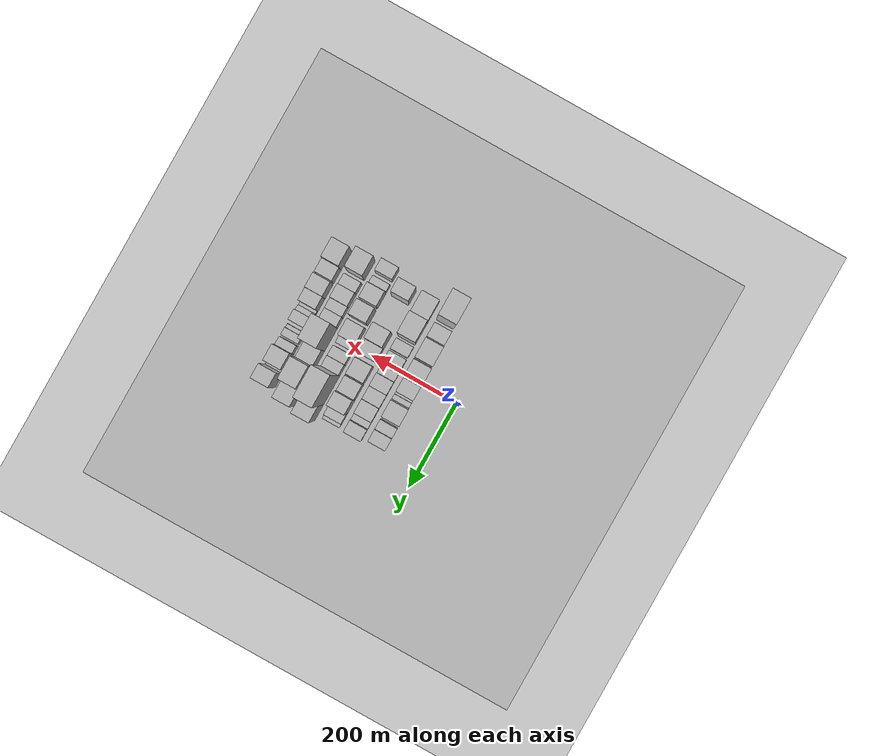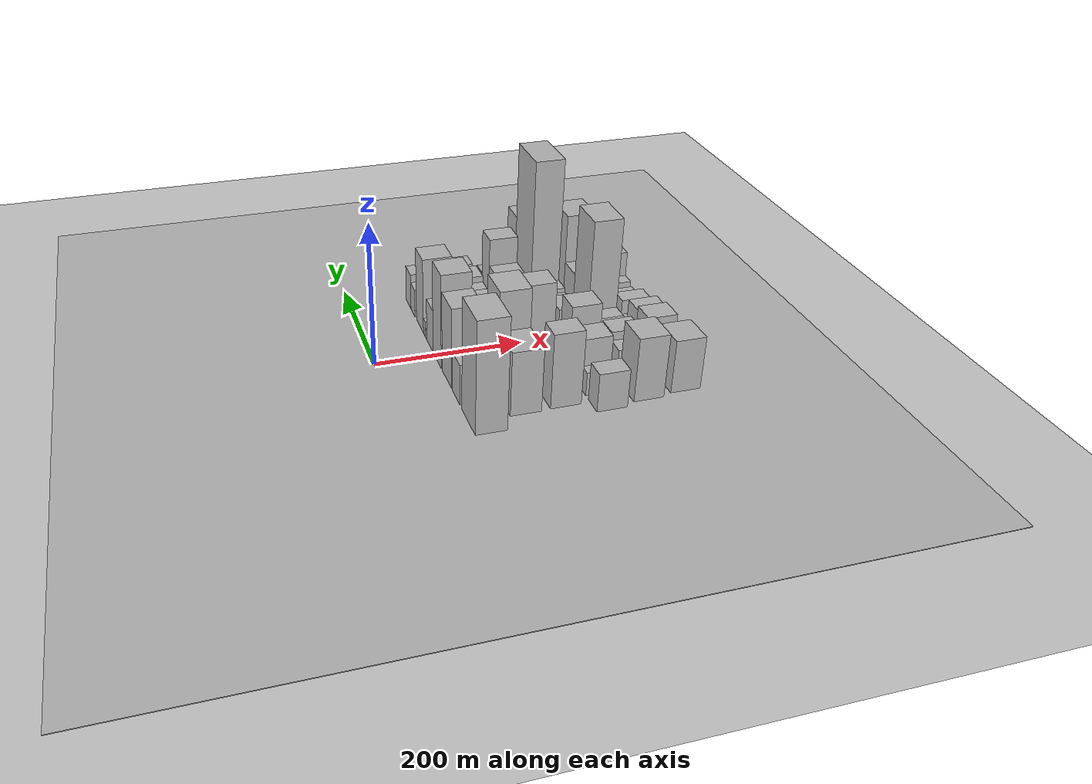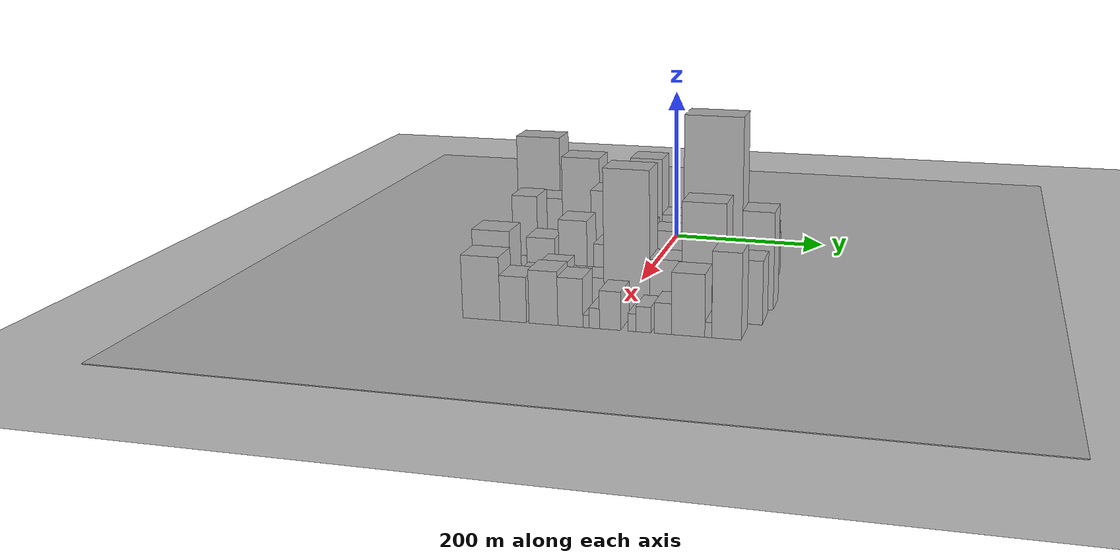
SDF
<sdf version="1.6">
 <world name="default">
  <include><name>ground_plane_1</name><uri>model://HANNAS_ground_plane</uri></include>
  <include>
   <name>ground_plane_2</name>
   <uri>model://HANNAS_ground_plane</uri>
   <pose>100 0 0  0 0 0</pose>
  </include>
  <model name="building_20">
   <static>1</static>
   <pose>100.0000 -157.6240 0 0.000000 0.000000 0.000000</pose>
   <link name="link">
    <pose>0 0 78.00 0 0 0</pose>
    <collision name="collision"><geometry><box><size>40.0000 57.4465 156.0000</size></box></geometry></collision>
    <visual name="visual">
     <cast_shadows>0</cast_shadows>
     <geometry><box><size>40.0000 57.4465 156.0000</size></box></geometry>
     <material>
      <script>
       <uri>model://HANNAS_wall/materials/scripts</uri>
       <uri>model://HANNAS_wall/materials/textures</uri>
       <name>vrc/HANNAS_wall</name>
      </script>
     </material>
    </visual>
   </link>
  </model>
  <model name="building_21">
   <static>1</static>
   <pose>100.0000 -103.6680 0 0.000000 0.000000 0.000000</pose>
   <link name="link">
    <pose>0 0 28.50 0 0 0</pose>
    <collision name="collision"><geometry><box><size>40.0000 32.4657 57.0000</size></box></geometry></collision>
    <visual name="visual">
     <cast_shadows>0</cast_shadows>
     <geometry><box><size>40.0000 32.4657 57.0000</size></box></geometry>
     <material>
      <script>
       <uri>model://HANNAS_wall/materials/scripts</uri>
       <uri>model://HANNAS_wall/materials/textures</uri>
       <name>vrc/HANNAS_wall</name>
      </script>
     </material>
    </visual>
   </link>
  </model>
  <model name="building_22">
   <static>1</static>
   <pose>100.0000 -60.3665 0 0.000000 0.000000 0.000000</pose>
   <link name="link">
    <pose>0 0 57.00 0 0 0</pose>
    <collision name="collision"><geometry><box><size>40.0000 44.1373 114.0000</size></box></geometry></collision>
    <visual name="visual">
     <cast_shadows>0</cast_shadows>
     <geometry><box><size>40.0000 44.1373 114.0000</size></box></geometry>
     <material>
      <script>
       <uri>model://HANNAS_wall/materials/scripts</uri>
       <uri>model://HANNAS_wall/materials/textures</uri>
       <name>vrc/HANNAS_wall</name>
      </script>
     </material>
    </visual>
   </link>
  </model>
  <model name="building_23">
   <static>1</static>
   <pose>100.0000 -13.8232 0 0.000000 0.000000 0.000000</pose>
   <link name="link">
    <pose>0 0 67.50 0 0 0</pose>
    <collision name="collision"><geometry><box><size>40.0000 40.9494 135.0000</size></box></geometry></collision>
    <visual name="visual">
     <cast_shadows>0</cast_shadows>
     <geometry><box><size>40.0000 40.9494 135.0000</size></box></geometry>
     <material>
      <script>
       <uri>model://HANNAS_wall/materials/scripts</uri>
       <uri>model://HANNAS_wall/materials/textures</uri>
       <name>vrc/HANNAS_wall</name>
      </script>
     </material>
    </visual>
   </link>
  </model>
  <model name="building_24">
   <static>1</static>
   <pose>100.0000 22.8650 0 0.000000 0.000000 0.000000</pose>
   <link name="link">
    <pose>0 0 31.50 0 0 0</pose>
    <collision name="collision"><geometry><box><size>40.0000 32.4269 63.0000</size></box></geometry></collision>
    <visual name="visual">
     <cast_shadows>0</cast_shadows>
     <geometry><box><size>40.0000 32.4269 63.0000</size></box></geometry>
     <material>
      <script>
       <uri>model://HANNAS_wall/materials/scripts</uri>
       <uri>model://HANNAS_wall/materials/textures</uri>
       <name>vrc/HANNAS_wall</name>
      </script>
     </material>
    </visual>
   </link>
  </model>
  <model name="building_25">
   <static>1</static>
   <pose>100.0000 42.1342 0 0.000000 0.000000 0.000000</pose>
   <link name="link">
    <pose>0 0 7.50 0 0 0</pose>
    <collision name="collision"><geometry><box><size>40.0000 6.1115 15.0000</size></box></geometry></collision>
    <visual name="visual">
     <cast_shadows>0</cast_shadows>
     <geometry><box><size>40.0000 6.1115 15.0000</size></box></geometry>
     <material>
      <script>
       <uri>model://HANNAS_wall/materials/scripts</uri>
       <uri>model://HANNAS_wall/materials/textures</uri>
       <name>vrc/HANNAS_wall</name>
      </script>
     </material>
    </visual>
   </link>
  </model>
  <model name="building_26">
   <static>1</static>
   <pose>100.0000 51.0352 0 0.000000 0.000000 0.000000</pose>
   <link name="link">
    <pose>0 0 12.00 0 0 0</pose>
    <collision name="collision"><geometry><box><size>40.0000 11.6906 24.0000</size></box></geometry></collision>
    <visual name="visual">
     <cast_shadows>0</cast_shadows>
     <geometry><box><size>40.0000 11.6906 24.0000</size></box></geometry>
     <material>
      <script>
       <uri>model://HANNAS_wall/materials/scripts</uri>
       <uri>model://HANNAS_wall/materials/textures</uri>
       <name>vrc/HANNAS_wall</name>
      </script>
     </material>
    </visual>
   </link>
  </model>
  <model name="building_27">
   <static>1</static>
   <pose>100.0000 75.7441 0 0.000000 0.000000 0.000000</pose>
   <link name="link">
    <pose>0 0 55.50 0 0 0</pose>
    <collision name="collision"><geometry><box><size>40.0000 37.7272 111.0000</size></box></geometry></collision>
    <visual name="visual">
     <cast_shadows>0</cast_shadows>
     <geometry><box><size>40.0000 37.7272 111.0000</size></box></geometry>
     <material>
      <script>
       <uri>model://HANNAS_wall/materials/scripts</uri>
       <uri>model://HANNAS_wall/materials/textures</uri>
       <name>vrc/HANNAS_wall</name>
      </script>
     </material>
    </visual>
   </link>
  </model>
  <model name="building_28">
   <static>1</static>
   <pose>100.0000 114.8784 0 0.000000 0.000000 0.000000</pose>
   <link name="link">
    <pose>0 0 21.00 0 0 0</pose>
    <collision name="collision"><geometry><box><size>40.0000 22.5414 42.0000</size></box></geometry></collision>
    <visual name="visual">
     <cast_shadows>0</cast_shadows>
     <geometry><box><size>40.0000 22.5414 42.0000</size></box></geometry>
     <material>
      <script>
       <uri>model://HANNAS_wall/materials/scripts</uri>
       <uri>model://HANNAS_wall/materials/textures</uri>
       <name>vrc/HANNAS_wall</name>
      </script>
     </material>
    </visual>
   </link>
  </model>
  <model name="building_29">
   <static>1</static>
   <pose>100.0000 139.9998 0 0.000000 0.000000 0.000000</pose>
   <link name="link">
    <pose>0 0 27.00 0 0 0</pose>
    <collision name="collision"><geometry><box><size>40.0000 27.7014 54.0000</size></box></geometry></collision>
    <visual name="visual">
     <cast_shadows>0</cast_shadows>
     <geometry><box><size>40.0000 27.7014 54.0000</size></box></geometry>
     <material>
      <script>
       <uri>model://HANNAS_wall/materials/scripts</uri>
       <uri>model://HANNAS_wall/materials/textures</uri>
       <name>vrc/HANNAS_wall</name>
      </script>
     </material>
    </visual>
   </link>
  </model>
  <model name="building_75">
   <static>1</static>
   <pose>152.0000 -135.1604 0 0.000000 0.000000 0.000000</pose>
   <link name="link">
    <pose>0 0 45.00 0 0 0</pose>
    <collision name="collision"><geometry><box><size>40.0000 50.0176 90.0000</size></box></geometry></collision>
    <visual name="visual">
     <cast_shadows>0</cast_shadows>
     <geometry><box><size>40.0000 50.0176 90.0000</size></box></geometry>
     <material>
      <script>
       <uri>model://HANNAS_wall/materials/scripts</uri>
       <uri>model://HANNAS_wall/materials/textures</uri>
       <name>vrc/HANNAS_wall</name>
      </script>
     </material>
    </visual>
   </link>
  </model>
  <model name="building_76">
   <static>1</static>
   <pose>152.0000 -85.8209 0 0.000000 0.000000 0.000000</pose>
   <link name="link">
    <pose>0 0 72.00 0 0 0</pose>
    <collision name="collision"><geometry><box><size>40.0000 48.6614 144.0000</size></box></geometry></collision>
    <visual name="visual">
     <cast_shadows>0</cast_shadows>
     <geometry><box><size>40.0000 48.6614 144.0000</size></box></geometry>
     <material>
      <script>
       <uri>model://HANNAS_wall/materials/scripts</uri>
       <uri>model://HANNAS_wall/materials/textures</uri>
       <name>vrc/HANNAS_wall</name>
      </script>
     </material>
    </visual>
   </link>
  </model>
  <model name="building_77">
   <static>1</static>
   <pose>152.0000 -42.9681 0 0.000000 0.000000 0.000000</pose>
   <link name="link">
    <pose>0 0 24.00 0 0 0</pose>
    <collision name="collision"><geometry><box><size>40.0000 25.0443 48.0000</size></box></geometry></collision>
    <visual name="visual">
     <cast_shadows>0</cast_shadows>
     <geometry><box><size>40.0000 25.0443 48.0000</size></box></geometry>
     <material>
      <script>
       <uri>model://HANNAS_wall/materials/scripts</uri>
       <uri>model://HANNAS_wall/materials/textures</uri>
       <name>vrc/HANNAS_wall</name>
      </script>
     </material>
    </visual>
   </link>
  </model>
  <model name="building_78">
   <static>1</static>
   <pose>152.0000 -10.2295 0 0.000000 0.000000 0.000000</pose>
   <link name="link">
    <pose>0 0 31.50 0 0 0</pose>
    <collision name="collision"><geometry><box><size>40.0000 32.4330 63.0000</size></box></geometry></collision>
    <visual name="visual">
     <cast_shadows>0</cast_shadows>
     <geometry><box><size>40.0000 32.4330 63.0000</size></box></geometry>
     <material>
      <script>
       <uri>model://HANNAS_wall/materials/scripts</uri>
       <uri>model://HANNAS_wall/materials/textures</uri>
       <name>vrc/HANNAS_wall</name>
      </script>
     </material>
    </visual>
   </link>
  </model>
  <model name="building_79">
   <static>1</static>
   <pose>152.0000 15.5596 0 0.000000 0.000000 0.000000</pose>
   <link name="link">
    <pose>0 0 16.50 0 0 0</pose>
    <collision name="collision"><geometry><box><size>40.0000 19.1452 33.0000</size></box></geometry></collision>
    <visual name="visual">
     <cast_shadows>0</cast_shadows>
     <geometry><box><size>40.0000 19.1452 33.0000</size></box></geometry>
     <material>
      <script>
       <uri>model://HANNAS_wall/materials/scripts</uri>
       <uri>model://HANNAS_wall/materials/textures</uri>
       <name>vrc/HANNAS_wall</name>
      </script>
     </material>
    </visual>
   </link>
  </model>
  <model name="building_80">
   <static>1</static>
   <pose>152.0000 40.1579 0 0.000000 0.000000 0.000000</pose>
   <link name="link">
    <pose>0 0 28.50 0 0 0</pose>
    <collision name="collision"><geometry><box><size>40.0000 30.0513 57.0000</size></box></geometry></collision>
    <visual name="visual">
     <cast_shadows>0</cast_shadows>
     <geometry><box><size>40.0000 30.0513 57.0000</size></box></geometry>
     <material>
      <script>
       <uri>model://HANNAS_wall/materials/scripts</uri>
       <uri>model://HANNAS_wall/materials/textures</uri>
       <name>vrc/HANNAS_wall</name>
      </script>
     </material>
    </visual>
   </link>
  </model>
  <model name="building_81">
   <static>1</static>
   <pose>152.0000 70.3495 0 0.000000 0.000000 0.000000</pose>
   <link name="link">
    <pose>0 0 25.50 0 0 0</pose>
    <collision name="collision"><geometry><box><size>40.0000 30.3320 51.0000</size></box></geometry></collision>
    <visual name="visual">
     <cast_shadows>0</cast_shadows>
     <geometry><box><size>40.0000 30.3320 51.0000</size></box></geometry>
     <material>
      <script>
       <uri>model://HANNAS_wall/materials/scripts</uri>
       <uri>model://HANNAS_wall/materials/textures</uri>
       <name>vrc/HANNAS_wall</name>
      </script>
     </material>
    </visual>
   </link>
  </model>
  <model name="building_82">
   <static>1</static>
   <pose>152.0000 101.6549 0 0.000000 0.000000 0.000000</pose>
   <link name="link">
    <pose>0 0 30.00 0 0 0</pose>
    <collision name="collision"><geometry><box><size>40.0000 32.2787 60.0000</size></box></geometry></collision>
    <visual name="visual">
     <cast_shadows>0</cast_shadows>
     <geometry><box><size>40.0000 32.2787 60.0000</size></box></geometry>
     <material>
      <script>
       <uri>model://HANNAS_wall/materials/scripts</uri>
       <uri>model://HANNAS_wall/materials/textures</uri>
       <name>vrc/HANNAS_wall</name>
      </script>
     </material>
    </visual>
   </link>
  </model>
  <model name="building_83">
   <static>1</static>
   <pose>152.0000 126.0476 0 0.000000 0.000000 0.000000</pose>
   <link name="link">
    <pose>0 0 15.00 0 0 0</pose>
    <collision name="collision"><geometry><box><size>40.0000 16.5067 30.0000</size></box></geometry></collision>
    <visual name="visual">
     <cast_shadows>0</cast_shadows>
     <geometry><box><size>40.0000 16.5067 30.0000</size></box></geometry>
     <material>
      <script>
       <uri>model://HANNAS_wall/materials/scripts</uri>
       <uri>model://HANNAS_wall/materials/textures</uri>
       <name>vrc/HANNAS_wall</name>
      </script>
     </material>
    </visual>
   </link>
  </model>
  <model name="building_84">
   <static>1</static>
   <pose>152.0000 147.8596 0 0.000000 0.000000 0.000000</pose>
   <link name="link">
    <pose>0 0 27.00 0 0 0</pose>
    <collision name="collision"><geometry><box><size>40.0000 27.1173 54.0000</size></box></geometry></collision>
    <visual name="visual">
     <cast_shadows>0</cast_shadows>
     <geometry><box><size>40.0000 27.1173 54.0000</size></box></geometry>
     <material>
      <script>
       <uri>model://HANNAS_wall/materials/scripts</uri>
       <uri>model://HANNAS_wall/materials/textures</uri>
       <name>vrc/HANNAS_wall</name>
      </script>
     </material>
    </visual>
   </link>
  </model>
  <model name="building_126">
   <static>1</static>
   <pose>204.0000 -142.4936 0 0.000000 0.000000 0.000000</pose>
   <link name="link">
    <pose>0 0 52.50 0 0 0</pose>
    <collision name="collision"><geometry><box><size>40.0000 31.9039 105.0000</size></box></geometry></collision>
    <visual name="visual">
     <cast_shadows>0</cast_shadows>
     <geometry><box><size>40.0000 31.9039 105.0000</size></box></geometry>
     <material>
      <script>
       <uri>model://HANNAS_wall/materials/scripts</uri>
       <uri>model://HANNAS_wall/materials/textures</uri>
       <name>vrc/HANNAS_wall</name>
      </script>
     </material>
    </visual>
   </link>
  </model>
  <model name="building_127">
   <static>1</static>
   <pose>204.0000 -40.2406 0 0.000000 0.000000 0.000000</pose>
   <link name="link">
    <pose>0 0 58.50 0 0 0</pose>
    <collision name="collision"><geometry><box><size>40.0000 35.5340 117.0000</size></box></geometry></collision>
    <visual name="visual">
     <cast_shadows>0</cast_shadows>
     <geometry><box><size>40.0000 35.5340 117.0000</size></box></geometry>
     <material>
      <script>
       <uri>model://HANNAS_wall/materials/scripts</uri>
       <uri>model://HANNAS_wall/materials/textures</uri>
       <name>vrc/HANNAS_wall</name>
      </script>
     </material>
    </visual>
   </link>
  </model>
  <model name="building_128">
   <static>1</static>
   <pose>204.0000 -6.9004 0 0.000000 0.000000 0.000000</pose>
   <link name="link">
    <pose>0 0 28.50 0 0 0</pose>
    <collision name="collision"><geometry><box><size>40.0000 31.1466 57.0000</size></box></geometry></collision>
    <visual name="visual">
     <cast_shadows>0</cast_shadows>
     <geometry><box><size>40.0000 31.1466 57.0000</size></box></geometry>
     <material>
      <script>
       <uri>model://HANNAS_wall/materials/scripts</uri>
       <uri>model://HANNAS_wall/materials/textures</uri>
       <name>vrc/HANNAS_wall</name>
      </script>
     </material>
    </visual>
   </link>
  </model>
  <model name="building_129">
   <static>1</static>
   <pose>204.0000 37.9134 0 0.000000 0.000000 0.000000</pose>
   <link name="link">
    <pose>0 0 36.00 0 0 0</pose>
    <collision name="collision"><geometry><box><size>40.0000 38.4809 72.0000</size></box></geometry></collision>
    <visual name="visual">
     <cast_shadows>0</cast_shadows>
     <geometry><box><size>40.0000 38.4809 72.0000</size></box></geometry>
     <material>
      <script>
       <uri>model://HANNAS_wall/materials/scripts</uri>
       <uri>model://HANNAS_wall/materials/textures</uri>
       <name>vrc/HANNAS_wall</name>
      </script>
     </material>
    </visual>
   </link>
  </model>
  <model name="building_130">
   <static>1</static>
   <pose>204.0000 77.5930 0 0.000000 0.000000 0.000000</pose>
   <link name="link">
    <pose>0 0 34.50 0 0 0</pose>
    <collision name="collision"><geometry><box><size>40.0000 34.8783 69.0000</size></box></geometry></collision>
    <visual name="visual">
     <cast_shadows>0</cast_shadows>
     <geometry><box><size>40.0000 34.8783 69.0000</size></box></geometry>
     <material>
      <script>
       <uri>model://HANNAS_wall/materials/scripts</uri>
       <uri>model://HANNAS_wall/materials/textures</uri>
       <name>vrc/HANNAS_wall</name>
      </script>
     </material>
    </visual>
   </link>
  </model>
  <model name="building_131">
   <static>1</static>
   <pose>204.0000 111.3332 0 0.000000 0.000000 0.000000</pose>
   <link name="link">
    <pose>0 0 54.00 0 0 0</pose>
    <collision name="collision"><geometry><box><size>40.0000 32.6023 108.0000</size></box></geometry></collision>
    <visual name="visual">
     <cast_shadows>0</cast_shadows>
     <geometry><box><size>40.0000 32.6023 108.0000</size></box></geometry>
     <material>
      <script>
       <uri>model://HANNAS_wall/materials/scripts</uri>
       <uri>model://HANNAS_wall/materials/textures</uri>
       <name>vrc/HANNAS_wall</name>
      </script>
     </material>
    </visual>
   </link>
  </model>
  <model name="building_132">
   <static>1</static>
   <pose>204.0000 139.5931 0 0.000000 0.000000 0.000000</pose>
   <link name="link">
    <pose>0 0 21.00 0 0 0</pose>
    <collision name="collision"><geometry><box><size>40.0000 23.9176 42.0000</size></box></geometry></collision>
    <visual name="visual">
     <cast_shadows>0</cast_shadows>
     <geometry><box><size>40.0000 23.9176 42.0000</size></box></geometry>
     <material>
      <script>
       <uri>model://HANNAS_wall/materials/scripts</uri>
       <uri>model://HANNAS_wall/materials/textures</uri>
       <name>vrc/HANNAS_wall</name>
      </script>
     </material>
    </visual>
   </link>
  </model>
  <model name="building_133">
   <static>1</static>
   <pose>204.0000 156.2663 0 0.000000 0.000000 0.000000</pose>
   <link name="link">
    <pose>0 0 10.50 0 0 0</pose>
    <collision name="collision"><geometry><box><size>40.0000 9.4288 21.0000</size></box></geometry></collision>
    <visual name="visual">
     <cast_shadows>0</cast_shadows>
     <geometry><box><size>40.0000 9.4288 21.0000</size></box></geometry>
     <material>
      <script>
       <uri>model://HANNAS_wall/materials/scripts</uri>
       <uri>model://HANNAS_wall/materials/textures</uri>
       <name>vrc/HANNAS_wall</name>
      </script>
     </material>
    </visual>
   </link>
  </model>
  <model name="building_177">
   <static>1</static>
   <pose>256.0000 -165.7973 0 0.000000 0.000000 0.000000</pose>
   <link name="link">
    <pose>0 0 27.00 0 0 0</pose>
    <collision name="collision"><geometry><box><size>40.0000 28.0317 54.0000</size></box></geometry></collision>
    <visual name="visual">
     <cast_shadows>0</cast_shadows>
     <geometry><box><size>40.0000 28.0317 54.0000</size></box></geometry>
     <material>
      <script>
       <uri>model://HANNAS_wall/materials/scripts</uri>
       <uri>model://HANNAS_wall/materials/textures</uri>
       <name>vrc/HANNAS_wall</name>
      </script>
     </material>
    </visual>
   </link>
  </model>
  <model name="building_178">
   <static>1</static>
   <pose>256.0000 -134.5184 0 0.000000 0.000000 0.000000</pose>
   <link name="link">
    <pose>0 0 16.50 0 0 0</pose>
    <collision name="collision"><geometry><box><size>40.0000 16.5261 33.0000</size></box></geometry></collision>
    <visual name="visual">
     <cast_shadows>0</cast_shadows>
     <geometry><box><size>40.0000 16.5261 33.0000</size></box></geometry>
     <material>
      <script>
       <uri>model://HANNAS_wall/materials/scripts</uri>
       <uri>model://HANNAS_wall/materials/textures</uri>
       <name>vrc/HANNAS_wall</name>
      </script>
     </material>
    </visual>
   </link>
  </model>
  <model name="building_179">
   <static>1</static>
   <pose>256.0000 -105.8083 0 0.000000 0.000000 0.000000</pose>
   <link name="link">
    <pose>0 0 34.50 0 0 0</pose>
    <collision name="collision"><geometry><box><size>40.0000 34.8940 69.0000</size></box></geometry></collision>
    <visual name="visual">
     <cast_shadows>0</cast_shadows>
     <geometry><box><size>40.0000 34.8940 69.0000</size></box></geometry>
     <material>
      <script>
       <uri>model://HANNAS_wall/materials/scripts</uri>
       <uri>model://HANNAS_wall/materials/textures</uri>
       <name>vrc/HANNAS_wall</name>
      </script>
     </material>
    </visual>
   </link>
  </model>
  <model name="building_180">
   <static>1</static>
   <pose>256.0000 -65.9725 0 0.000000 0.000000 0.000000</pose>
   <link name="link">
    <pose>0 0 46.50 0 0 0</pose>
    <collision name="collision"><geometry><box><size>40.0000 34.7776 93.0000</size></box></geometry></collision>
    <visual name="visual">
     <cast_shadows>0</cast_shadows>
     <geometry><box><size>40.0000 34.7776 93.0000</size></box></geometry>
     <material>
      <script>
       <uri>model://HANNAS_wall/materials/scripts</uri>
       <uri>model://HANNAS_wall/materials/textures</uri>
       <name>vrc/HANNAS_wall</name>
      </script>
     </material>
    </visual>
   </link>
  </model>
  <model name="building_181">
   <static>1</static>
   <pose>256.0000 -21.6365 0 0.000000 0.000000 0.000000</pose>
   <link name="link">
    <pose>0 0 33.00 0 0 0</pose>
    <collision name="collision"><geometry><box><size>40.0000 37.8945 66.0000</size></box></geometry></collision>
    <visual name="visual">
     <cast_shadows>0</cast_shadows>
     <geometry><box><size>40.0000 37.8945 66.0000</size></box></geometry>
     <material>
      <script>
       <uri>model://HANNAS_wall/materials/scripts</uri>
       <uri>model://HANNAS_wall/materials/textures</uri>
       <name>vrc/HANNAS_wall</name>
      </script>
     </material>
    </visual>
   </link>
  </model>
  <model name="building_182">
   <static>1</static>
   <pose>256.0000 5.0600 0 0.000000 0.000000 0.000000</pose>
   <link name="link">
    <pose>0 0 15.00 0 0 0</pose>
    <collision name="collision"><geometry><box><size>40.0000 15.4984 30.0000</size></box></geometry></collision>
    <visual name="visual">
     <cast_shadows>0</cast_shadows>
     <geometry><box><size>40.0000 15.4984 30.0000</size></box></geometry>
     <material>
      <script>
       <uri>model://HANNAS_wall/materials/scripts</uri>
       <uri>model://HANNAS_wall/materials/textures</uri>
       <name>vrc/HANNAS_wall</name>
      </script>
     </material>
    </visual>
   </link>
  </model>
  <model name="building_183">
   <static>1</static>
   <pose>256.0000 31.6929 0 0.000000 0.000000 0.000000</pose>
   <link name="link">
    <pose>0 0 21.00 0 0 0</pose>
    <collision name="collision"><geometry><box><size>40.0000 23.7675 42.0000</size></box></geometry></collision>
    <visual name="visual">
     <cast_shadows>0</cast_shadows>
     <geometry><box><size>40.0000 23.7675 42.0000</size></box></geometry>
     <material>
      <script>
       <uri>model://HANNAS_wall/materials/scripts</uri>
       <uri>model://HANNAS_wall/materials/textures</uri>
       <name>vrc/HANNAS_wall</name>
      </script>
     </material>
    </visual>
   </link>
  </model>
  <model name="building_184">
   <static>1</static>
   <pose>256.0000 55.8964 0 0.000000 0.000000 0.000000</pose>
   <link name="link">
    <pose>0 0 24.00 0 0 0</pose>
    <collision name="collision"><geometry><box><size>40.0000 24.6395 48.0000</size></box></geometry></collision>
    <visual name="visual">
     <cast_shadows>0</cast_shadows>
     <geometry><box><size>40.0000 24.6395 48.0000</size></box></geometry>
     <material>
      <script>
       <uri>model://HANNAS_wall/materials/scripts</uri>
       <uri>model://HANNAS_wall/materials/textures</uri>
       <name>vrc/HANNAS_wall</name>
      </script>
     </material>
    </visual>
   </link>
  </model>
  <model name="building_185">
   <static>1</static>
   <pose>256.0000 102.4235 0 0.000000 0.000000 0.000000</pose>
   <link name="link">
    <pose>0 0 112.50 0 0 0</pose>
    <collision name="collision"><geometry><box><size>40.0000 68.4146 225.0000</size></box></geometry></collision>
    <visual name="visual">
     <cast_shadows>0</cast_shadows>
     <geometry><box><size>40.0000 68.4146 225.0000</size></box></geometry>
     <material>
      <script>
       <uri>model://HANNAS_wall/materials/scripts</uri>
       <uri>model://HANNAS_wall/materials/textures</uri>
       <name>vrc/HANNAS_wall</name>
      </script>
     </material>
    </visual>
   </link>
  </model>
  <model name="building_186">
   <static>1</static>
   <pose>256.0000 155.1652 0 0.000000 0.000000 0.000000</pose>
   <link name="link">
    <pose>0 0 58.50 0 0 0</pose>
    <collision name="collision"><geometry><box><size>40.0000 37.0689 117.0000</size></box></geometry></collision>
    <visual name="visual">
     <cast_shadows>0</cast_shadows>
     <geometry><box><size>40.0000 37.0689 117.0000</size></box></geometry>
     <material>
      <script>
       <uri>model://HANNAS_wall/materials/scripts</uri>
       <uri>model://HANNAS_wall/materials/textures</uri>
       <name>vrc/HANNAS_wall</name>
      </script>
     </material>
    </visual>
   </link>
  </model>
  <model name="building_224">
   <static>1</static>
   <pose>308.0000 -149.0042 0 0.000000 0.000000 0.000000</pose>
   <link name="link">
    <pose>0 0 45.00 0 0 0</pose>
    <collision name="collision"><geometry><box><size>40.0000 45.4760 90.0000</size></box></geometry></collision>
    <visual name="visual">
     <cast_shadows>0</cast_shadows>
     <geometry><box><size>40.0000 45.4760 90.0000</size></box></geometry>
     <material>
      <script>
       <uri>model://HANNAS_wall/materials/scripts</uri>
       <uri>model://HANNAS_wall/materials/textures</uri>
       <name>vrc/HANNAS_wall</name>
      </script>
     </material>
    </visual>
   </link>
  </model>
  <model name="building_225">
   <static>1</static>
   <pose>308.0000 -104.7987 0 0.000000 0.000000 0.000000</pose>
   <link name="link">
    <pose>0 0 21.00 0 0 0</pose>
    <collision name="collision"><geometry><box><size>40.0000 24.9350 42.0000</size></box></geometry></collision>
    <visual name="visual">
     <cast_shadows>0</cast_shadows>
     <geometry><box><size>40.0000 24.9350 42.0000</size></box></geometry>
     <material>
      <script>
       <uri>model://HANNAS_wall/materials/scripts</uri>
       <uri>model://HANNAS_wall/materials/textures</uri>
       <name>vrc/HANNAS_wall</name>
      </script>
     </material>
    </visual>
   </link>
  </model>
  <model name="building_226">
   <static>1</static>
   <pose>308.0000 -76.5376 0 0.000000 0.000000 0.000000</pose>
   <link name="link">
    <pose>0 0 27.00 0 0 0</pose>
    <collision name="collision"><geometry><box><size>40.0000 31.5873 54.0000</size></box></geometry></collision>
    <visual name="visual">
     <cast_shadows>0</cast_shadows>
     <geometry><box><size>40.0000 31.5873 54.0000</size></box></geometry>
     <material>
      <script>
       <uri>model://HANNAS_wall/materials/scripts</uri>
       <uri>model://HANNAS_wall/materials/textures</uri>
       <name>vrc/HANNAS_wall</name>
      </script>
     </material>
    </visual>
   </link>
  </model>
  <model name="building_227">
   <static>1</static>
   <pose>308.0000 -49.0913 0 0.000000 0.000000 0.000000</pose>
   <link name="link">
    <pose>0 0 21.00 0 0 0</pose>
    <collision name="collision"><geometry><box><size>40.0000 23.3052 42.0000</size></box></geometry></collision>
    <visual name="visual">
     <cast_shadows>0</cast_shadows>
     <geometry><box><size>40.0000 23.3052 42.0000</size></box></geometry>
     <material>
      <script>
       <uri>model://HANNAS_wall/materials/scripts</uri>
       <uri>model://HANNAS_wall/materials/textures</uri>
       <name>vrc/HANNAS_wall</name>
      </script>
     </material>
    </visual>
   </link>
  </model>
  <model name="building_228">
   <static>1</static>
   <pose>308.0000 -25.6803 0 0.000000 0.000000 0.000000</pose>
   <link name="link">
    <pose>0 0 21.00 0 0 0</pose>
    <collision name="collision"><geometry><box><size>40.0000 23.5169 42.0000</size></box></geometry></collision>
    <visual name="visual">
     <cast_shadows>0</cast_shadows>
     <geometry><box><size>40.0000 23.5169 42.0000</size></box></geometry>
     <material>
      <script>
       <uri>model://HANNAS_wall/materials/scripts</uri>
       <uri>model://HANNAS_wall/materials/textures</uri>
       <name>vrc/HANNAS_wall</name>
      </script>
     </material>
    </visual>
   </link>
  </model>
  <model name="building_229">
   <static>1</static>
   <pose>308.0000 12.8914 0 0.000000 0.000000 0.000000</pose>
   <link name="link">
    <pose>0 0 85.50 0 0 0</pose>
    <collision name="collision"><geometry><box><size>40.0000 53.6263 171.0000</size></box></geometry></collision>
    <visual name="visual">
     <cast_shadows>0</cast_shadows>
     <geometry><box><size>40.0000 53.6263 171.0000</size></box></geometry>
     <material>
      <script>
       <uri>model://HANNAS_wall/materials/scripts</uri>
       <uri>model://HANNAS_wall/materials/textures</uri>
       <name>vrc/HANNAS_wall</name>
      </script>
     </material>
    </visual>
   </link>
  </model>
  <model name="building_230">
   <static>1</static>
   <pose>308.0000 58.3735 0 0.000000 0.000000 0.000000</pose>
   <link name="link">
    <pose>0 0 34.50 0 0 0</pose>
    <collision name="collision"><geometry><box><size>40.0000 37.3380 69.0000</size></box></geometry></collision>
    <visual name="visual">
     <cast_shadows>0</cast_shadows>
     <geometry><box><size>40.0000 37.3380 69.0000</size></box></geometry>
     <material>
      <script>
       <uri>model://HANNAS_wall/materials/scripts</uri>
       <uri>model://HANNAS_wall/materials/textures</uri>
       <name>vrc/HANNAS_wall</name>
      </script>
     </material>
    </visual>
   </link>
  </model>
  <model name="building_231">
   <static>1</static>
   <pose>308.0000 102.1707 0 0.000000 0.000000 0.000000</pose>
   <link name="link">
    <pose>0 0 69.00 0 0 0</pose>
    <collision name="collision"><geometry><box><size>40.0000 50.2563 138.0000</size></box></geometry></collision>
    <visual name="visual">
     <cast_shadows>0</cast_shadows>
     <geometry><box><size>40.0000 50.2563 138.0000</size></box></geometry>
     <material>
      <script>
       <uri>model://HANNAS_wall/materials/scripts</uri>
       <uri>model://HANNAS_wall/materials/textures</uri>
       <name>vrc/HANNAS_wall</name>
      </script>
     </material>
    </visual>
   </link>
  </model>
  <model name="building_232">
   <static>1</static>
   <pose>308.0000 148.1914 0 0.000000 0.000000 0.000000</pose>
   <link name="link">
    <pose>0 0 37.50 0 0 0</pose>
    <collision name="collision"><geometry><box><size>40.0000 41.7850 75.0000</size></box></geometry></collision>
    <visual name="visual">
     <cast_shadows>0</cast_shadows>
     <geometry><box><size>40.0000 41.7850 75.0000</size></box></geometry>
     <material>
      <script>
       <uri>model://HANNAS_wall/materials/scripts</uri>
       <uri>model://HANNAS_wall/materials/textures</uri>
       <name>vrc/HANNAS_wall</name>
      </script>
     </material>
    </visual>
   </link>
  </model>
  <model name="building_271">
   <static>1</static>
   <pose>360.0000 -143.6173 0 0.000000 0.000000 0.000000</pose>
   <link name="link">
    <pose>0 0 37.50 0 0 0</pose>
    <collision name="collision"><geometry><box><size>40.0000 44.6559 75.0000</size></box></geometry></collision>
    <visual name="visual">
     <cast_shadows>0</cast_shadows>
     <geometry><box><size>40.0000 44.6559 75.0000</size></box></geometry>
     <material>
      <script>
       <uri>model://HANNAS_wall/materials/scripts</uri>
       <uri>model://HANNAS_wall/materials/textures</uri>
       <name>vrc/HANNAS_wall</name>
      </script>
     </material>
    </visual>
   </link>
  </model>
  <model name="building_272">
   <static>1</static>
   <pose>360.0000 -105.6601 0 0.000000 0.000000 0.000000</pose>
   <link name="link">
    <pose>0 0 27.00 0 0 0</pose>
    <collision name="collision"><geometry><box><size>40.0000 31.2584 54.0000</size></box></geometry></collision>
    <visual name="visual">
     <cast_shadows>0</cast_shadows>
     <geometry><box><size>40.0000 31.2584 54.0000</size></box></geometry>
     <material>
      <script>
       <uri>model://HANNAS_wall/materials/scripts</uri>
       <uri>model://HANNAS_wall/materials/textures</uri>
       <name>vrc/HANNAS_wall</name>
      </script>
     </material>
    </visual>
   </link>
  </model>
  <model name="building_273">
   <static>1</static>
   <pose>360.0000 -70.2090 0 0.000000 0.000000 0.000000</pose>
   <link name="link">
    <pose>0 0 31.50 0 0 0</pose>
    <collision name="collision"><geometry><box><size>40.0000 33.6439 63.0000</size></box></geometry></collision>
    <visual name="visual">
     <cast_shadows>0</cast_shadows>
     <geometry><box><size>40.0000 33.6439 63.0000</size></box></geometry>
     <material>
      <script>
       <uri>model://HANNAS_wall/materials/scripts</uri>
       <uri>model://HANNAS_wall/materials/textures</uri>
       <name>vrc/HANNAS_wall</name>
      </script>
     </material>
    </visual>
   </link>
  </model>
  <model name="building_274">
   <static>1</static>
   <pose>360.0000 -38.8140 0 0.000000 0.000000 0.000000</pose>
   <link name="link">
    <pose>0 0 28.50 0 0 0</pose>
    <collision name="collision"><geometry><box><size>40.0000 29.1460 57.0000</size></box></geometry></collision>
    <visual name="visual">
     <cast_shadows>0</cast_shadows>
     <geometry><box><size>40.0000 29.1460 57.0000</size></box></geometry>
     <material>
      <script>
       <uri>model://HANNAS_wall/materials/scripts</uri>
       <uri>model://HANNAS_wall/materials/textures</uri>
       <name>vrc/HANNAS_wall</name>
      </script>
     </material>
    </visual>
   </link>
  </model>
  <model name="building_275">
   <static>1</static>
   <pose>360.0000 -20.6896 0 0.000000 0.000000 0.000000</pose>
   <link name="link">
    <pose>0 0 7.50 0 0 0</pose>
    <collision name="collision"><geometry><box><size>40.0000 7.1028 15.0000</size></box></geometry></collision>
    <visual name="visual">
     <cast_shadows>0</cast_shadows>
     <geometry><box><size>40.0000 7.1028 15.0000</size></box></geometry>
     <material>
      <script>
       <uri>model://HANNAS_wall/materials/scripts</uri>
       <uri>model://HANNAS_wall/materials/textures</uri>
       <name>vrc/HANNAS_wall</name>
      </script>
     </material>
    </visual>
   </link>
  </model>
  <model name="building_276">
   <static>1</static>
   <pose>360.0000 -11.1517 0 0.000000 0.000000 0.000000</pose>
   <link name="link">
    <pose>0 0 12.00 0 0 0</pose>
    <collision name="collision"><geometry><box><size>40.0000 11.9730 24.0000</size></box></geometry></collision>
    <visual name="visual">
     <cast_shadows>0</cast_shadows>
     <geometry><box><size>40.0000 11.9730 24.0000</size></box></geometry>
     <material>
      <script>
       <uri>model://HANNAS_wall/materials/scripts</uri>
       <uri>model://HANNAS_wall/materials/textures</uri>
       <name>vrc/HANNAS_wall</name>
      </script>
     </material>
    </visual>
   </link>
  </model>
  <model name="building_277">
   <static>1</static>
   <pose>360.0000 7.0204 0 0.000000 0.000000 0.000000</pose>
   <link name="link">
    <pose>0 0 22.50 0 0 0</pose>
    <collision name="collision"><geometry><box><size>40.0000 24.3714 45.0000</size></box></geometry></collision>
    <visual name="visual">
     <cast_shadows>0</cast_shadows>
     <geometry><box><size>40.0000 24.3714 45.0000</size></box></geometry>
     <material>
      <script>
       <uri>model://HANNAS_wall/materials/scripts</uri>
       <uri>model://HANNAS_wall/materials/textures</uri>
       <name>vrc/HANNAS_wall</name>
      </script>
     </material>
    </visual>
   </link>
  </model>
  <model name="building_278">
   <static>1</static>
   <pose>360.0000 31.7530 0 0.000000 0.000000 0.000000</pose>
   <link name="link">
    <pose>0 0 10.50 0 0 0</pose>
    <collision name="collision"><geometry><box><size>40.0000 9.0938 21.0000</size></box></geometry></collision>
    <visual name="visual">
     <cast_shadows>0</cast_shadows>
     <geometry><box><size>40.0000 9.0938 21.0000</size></box></geometry>
     <material>
      <script>
       <uri>model://HANNAS_wall/materials/scripts</uri>
       <uri>model://HANNAS_wall/materials/textures</uri>
       <name>vrc/HANNAS_wall</name>
      </script>
     </material>
    </visual>
   </link>
  </model>
  <model name="building_279">
   <static>1</static>
   <pose>360.0000 44.9216 0 0.000000 0.000000 0.000000</pose>
   <link name="link">
    <pose>0 0 15.00 0 0 0</pose>
    <collision name="collision"><geometry><box><size>40.0000 17.2434 30.0000</size></box></geometry></collision>
    <visual name="visual">
     <cast_shadows>0</cast_shadows>
     <geometry><box><size>40.0000 17.2434 30.0000</size></box></geometry>
     <material>
      <script>
       <uri>model://HANNAS_wall/materials/scripts</uri>
       <uri>model://HANNAS_wall/materials/textures</uri>
       <name>vrc/HANNAS_wall</name>
      </script>
     </material>
    </visual>
   </link>
  </model>
  <model name="building_280">
   <static>1</static>
   <pose>360.0000 67.0462 0 0.000000 0.000000 0.000000</pose>
   <link name="link">
    <pose>0 0 18.00 0 0 0</pose>
    <collision name="collision"><geometry><box><size>40.0000 19.0058 36.0000</size></box></geometry></collision>
    <visual name="visual">
     <cast_shadows>0</cast_shadows>
     <geometry><box><size>40.0000 19.0058 36.0000</size></box></geometry>
     <material>
      <script>
       <uri>model://HANNAS_wall/materials/scripts</uri>
       <uri>model://HANNAS_wall/materials/textures</uri>
       <name>vrc/HANNAS_wall</name>
      </script>
     </material>
    </visual>
   </link>
  </model>
  <model name="building_281">
   <static>1</static>
   <pose>360.0000 95.2002 0 0.000000 0.000000 0.000000</pose>
   <link name="link">
    <pose>0 0 36.00 0 0 0</pose>
    <collision name="collision"><geometry><box><size>40.0000 37.3022 72.0000</size></box></geometry></collision>
    <visual name="visual">
     <cast_shadows>0</cast_shadows>
     <geometry><box><size>40.0000 37.3022 72.0000</size></box></geometry>
     <material>
      <script>
       <uri>model://HANNAS_wall/materials/scripts</uri>
       <uri>model://HANNAS_wall/materials/textures</uri>
       <name>vrc/HANNAS_wall</name>
      </script>
     </material>
    </visual>
   </link>
  </model>
  <model name="building_282">
   <static>1</static>
   <pose>360.0000 117.7105 0 0.000000 0.000000 0.000000</pose>
   <link name="link">
    <pose>0 0 9.00 0 0 0</pose>
    <collision name="collision"><geometry><box><size>40.0000 7.7182 18.0000</size></box></geometry></collision>
    <visual name="visual">
     <cast_shadows>0</cast_shadows>
     <geometry><box><size>40.0000 7.7182 18.0000</size></box></geometry>
     <material>
      <script>
       <uri>model://HANNAS_wall/materials/scripts</uri>
       <uri>model://HANNAS_wall/materials/textures</uri>
       <name>vrc/HANNAS_wall</name>
      </script>
     </material>
    </visual>
   </link>
  </model>
  <model name="building_283">
   <static>1</static>
   <pose>360.0000 137.9249 0 0.000000 0.000000 0.000000</pose>
   <link name="link">
    <pose>0 0 49.50 0 0 0</pose>
    <collision name="collision"><geometry><box><size>40.0000 32.7107 99.0000</size></box></geometry></collision>
    <visual name="visual">
     <cast_shadows>0</cast_shadows>
     <geometry><box><size>40.0000 32.7107 99.0000</size></box></geometry>
     <material>
      <script>
       <uri>model://HANNAS_wall/materials/scripts</uri>
       <uri>model://HANNAS_wall/materials/textures</uri>
       <name>vrc/HANNAS_wall</name>
      </script>
     </material>
    </visual>
   </link>
  </model>
 </world>
</sdf>
